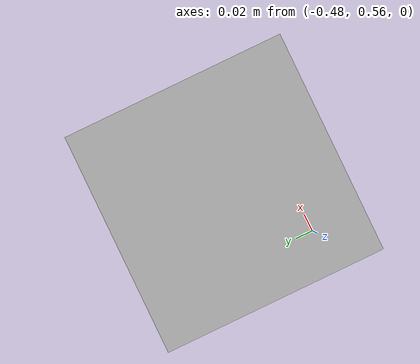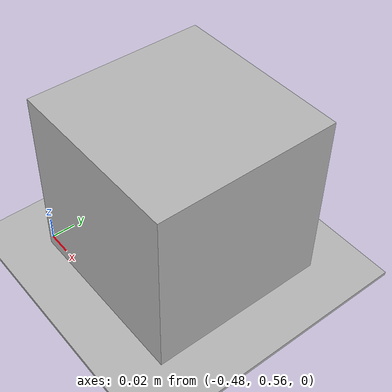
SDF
<?xml version="1.0" ?>
<sdf version="1.5">
    <world name="default">
	<!--place the sun in the world as light source -->
        <include>
            <uri>model://sun</uri>
        </include>
	<!--place the the track as ground plane in the world -->
        <include>
            <uri>model://rosbot_simulation/models/track_1</uri>
        </include>
        <include>
            <uri>model://rosbot_simulation/models/tram</uri>
            <pose>-0.4 0.63 0.075 0 0 0</pose>
            <static>false</static>
        </include>
    </world>
</sdf>

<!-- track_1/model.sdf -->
<sdf version="1.4">
<model name="track_1">
<!-- ground plane cannot move, so object is static-->
  <static>true</static>
    <link name="link">
<!--the collision object of the custom ground plane-->
      <collision name="collision">
        <geometry>
          <plane>
            <normal>0 0 1</normal>
    	    <!--define the collision size of the custom ground plane-->
            <size>3 4</size>
          </plane>
        </geometry>
        <surface>
          <friction>
            <ode>
              <mu>100</mu>
              <mu2>50</mu2>
            </ode>
          </friction>
        </surface>
      </collision>
<!--the visual object of the custom ground plane-->
      <visual name="visual">
        <cast_shadows>false</cast_shadows>
        <geometry>
          <plane>
            <normal>0 0 1</normal>
	    <!--define the visual size of the custom ground plane-->
            <size>3 4</size>
          </plane>
        </geometry>
	<!--define the material which the custom ground plane consists of-->
        <material>
          <script>
            <uri>model://rosbot_simulation/models/track_1/materials/scripts</uri>
            <uri>model://rosbot_simulation/models/track_1/materials/textures</uri>
            <name>Track1/Image</name>
          </script>
        </material>
      </visual>
    </link>
  </model>
</sdf>

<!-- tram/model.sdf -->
<sdf version="1.4">
<model name="tram">
<!-- ground plane cannot move, so object is static-->
  <static>false</static>
    <link name="link">
      <inertial>
        <mass>2.0</mass>
        <inertia>
          <ixx>0.0075</ixx>
          <ixy>0.0</ixy>
          <ixz>0.0</ixz>
          <iyy>0.0075</iyy>
          <iyz>0.0</iyz>
          <izz>0.0075</izz>
        </inertia>
      </inertial>
<!--the collision object of the custom ground plane-->
      <collision name="collision">
        <geometry>
          <box>
            <size>0.15 0.15 0.15</size>
          </box>
        </geometry>
        <surface>
          <friction>
            <ode>
              <mu>100</mu>
              <mu2>50</mu2>
            </ode>
          </friction>
        </surface>
      </collision>
<!--the visual object of the custom ground plane-->
      <visual name="visual">
        <cast_shadows>true</cast_shadows>
        <geometry>
          <box>
            <size>0.15 0.15 0.15</size>
          </box>
        </geometry>
	<!--define the material which the custom ground plane consists of-->
        <material>
          <script>
            <uri>model://rosbot_simulation/models/tram/materials/scripts</uri>
            <uri>model://rosbot_simulation/models/tram/materials/textures</uri>
            <name>Tram/Image</name>
          </script>
        </material>
      </visual>
    </link>
  </model>
</sdf>
